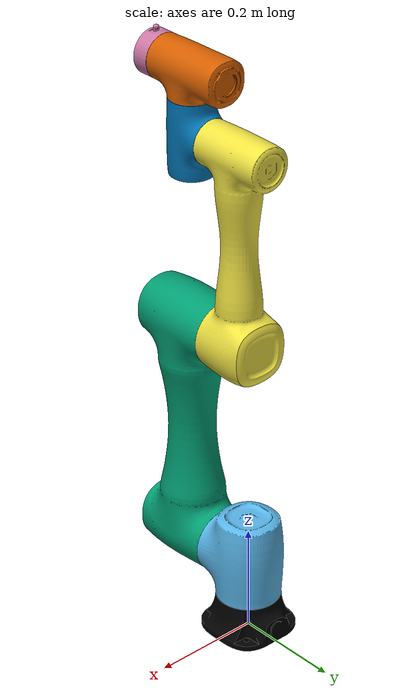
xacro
<?xml version="1.0"?>
<robot name="cr5_robot" xmlns:xacro="http://ros.org/wiki/xacro">
  <link name="base_link">
    <inertial>
      <origin xyz="-8.0961E-06 0.0019103 0.028995" rpy="0 0 0"/>
      <mass value="0.90882"/>
      <inertia
          ixx="0.0014545"
          ixy="4.2968E-08"
          ixz="-1.8199E-07"
          iyy="0.001345"
          iyz="-6.243E-06"
          izz="0.002155" />
    </inertial>
    <visual>
      <origin xyz="0 0 0" rpy="1.57 0 0"/>
      <geometry>
        <mesh filename="file://$(find cr5_description)/meshes/base_link.obj"/>
      </geometry>
      <material
          name="">
        <color rgba="0 0 0 1"/>
      </material>
    </visual>
    <collision>
      <origin xyz="0 0 0" rpy="1.57 0 0"/>
      <geometry>
        <mesh filename="file://$(find cr5_description)/meshes/base_link.obj"/>
      </geometry>
    </collision>
  </link>

  <link name="Link1">
    <inertial>
      <origin xyz="-8.7268E-07 -0.0032576 -0.0076748" rpy="0 0 0"/>
      <mass value="1.6123"/>
      <inertia
          ixx="0.0029122"
          ixy="5.7387E-09"
          ixz="1.9945E-08"
          iyy="0.0028191"
          iyz="0.00044094"
          izz="0.0032836" />
    </inertial>
    <visual>
      <origin xyz="0 0 0" rpy="1.57 0 0"/>
      <geometry>
        <mesh filename="file://$(find cr5_description)/meshes/Link1.obj"/>
      </geometry>

    </visual>
    <collision>
      <origin xyz="0 0 0" rpy="1.57 0 0"/>
      <geometry>
        <mesh filename="file://$(find cr5_description)/meshes/Link1.obj"/>
      </geometry>
    </collision>
  </link>

  <joint name="joint1" type="revolute">
    <origin xyz="0 0 0.147" rpy="0 0 0"/>
    <parent link="base_link"/>
    <child link="Link1"/>
    <axis xyz="0 0 1"/>
    <limit lower="-3.14" upper="3.14" effort="300" velocity="100"/>
  </joint>

  <link name="Link2">
    <inertial>
      <origin xyz="-0.21351 -1.3842E-06 0.14252" rpy="0 0 0"/>
      <mass value="5.5186"/>
      <inertia
          ixx="0.0085919"
          ixy="7.5552E-07"
          ixz="-7.8922E-07"
          iyy="0.027553"
          iyz="1.4629E-07"
          izz="0.028294" />
    </inertial>
    <visual>
      <origin xyz="0 0 0" rpy="1.57 0 0"/>
      <geometry>
        <mesh filename="file://$(find cr5_description)/meshes/Link2.obj"/>
      </geometry>

    </visual>
    <collision>
      <origin xyz="0 0 0" rpy="1.57 0 0"/>
      <geometry>
        <mesh filename="file://$(find cr5_description)/meshes/Link2.obj"/>
      </geometry>
    </collision>
  </link>

  <joint name="joint2" type="revolute">
    <origin xyz="0 0 0" rpy="1.5708 1.5708 0"/>
    <parent link="Link1"/>
    <child link="Link2"/>
    <axis xyz="0 0 1"/>
    <limit lower="-3.14" upper="3.14" effort="300" velocity="100"/>
  </joint>

  <link name="Link3">
    <inertial>
      <origin xyz="-0.15231 -1.4079E-07 0.022693" rpy="0 0 0"/>
      <mass value="2.8536"/>
      <inertia
          ixx="0.0032608"
          ixy="-3.2147E-10"
          ixz="0.00012363"
          iyy="0.0092967"
          iyz="2.9478E-10"
          izz="0.0095552" />
    </inertial>
    <visual>
      <origin xyz="0 0 0" rpy="1.57 0 0"/>
      <geometry>
        <mesh filename="file://$(find cr5_description)/meshes/Link3.obj"/>
      </geometry>

    </visual>
    <collision>
      <origin xyz="0 0 0" rpy="1.57 0 0"/>
      <geometry>
        <mesh filename="file://$(find cr5_description)/meshes/Link3.obj"/>
      </geometry>
    </collision>
  </link>

  <joint name="joint3" type="revolute">
    <origin xyz="-0.427 0 0" rpy="0 0 0"/>
    <parent link="Link2"/>
    <child link="Link3"/>
    <axis xyz="0 0 1"/>
    <limit lower="-2.86" upper="2.86" effort="300" velocity="100"/>
  </joint>

  <link name="Link4">
    <inertial>
      <origin xyz="-3.2386E-07 -0.002077 -0.0015548" rpy="0 0 0"/>
      <mass value="0.67058"/>
      <inertia
          ixx="0.00066939"
          ixy="4.1975E-10"
          ixz="-1.0734E-08"
          iyy="0.00065424"
          iyz="0.00011081"
          izz="0.00065365" />
    </inertial>
    <visual>
      <origin xyz="0 0 0" rpy="1.57 0 0"/>
      <geometry>
        <mesh filename="file://$(find cr5_description)/meshes/Link4.obj"/>
      </geometry>

    </visual>
    <collision>
      <origin xyz="0 0 0" rpy="1.57 0 0"/>
      <geometry>
        <mesh filename="file://$(find cr5_description)/meshes/Link4.obj"/>
      </geometry>
    </collision>
  </link>

  <joint name="joint4" type="revolute">
    <origin xyz="-0.357 0 0.141" rpy="0 0 -1.5708"/>
    <parent link="Link3"/>
    <child link="Link4"/>
    <axis xyz="0 0 1"/>
    <limit lower="-3.14" upper="3.14" effort="300" velocity="100"/>
  </joint>
  <link
      name="Link5">
    <inertial>
      <origin xyz="-3.7738E-07 -0.0045777 -0.0012971" rpy="0 0 0"/>
      <mass value="0.7269"/>
      <inertia
          ixx="0.00073069"
          ixy="-5.7806E-09"
          ixz="6.7132E-09"
          iyy="0.00071195"
          iyz="-0.00011926"
          izz="0.00071391" />
    </inertial>
    <visual>
      <origin xyz="0 0 0" rpy="1.57 0 0"/>
      <geometry>
        <mesh filename="file://$(find cr5_description)/meshes/Link5.obj"/>
      </geometry>

    </visual>
    <collision>
      <origin xyz="0 0 0" rpy="1.57 0 0"/>
      <geometry>
        <mesh filename="file://$(find cr5_description)/meshes/Link5.obj"/>
      </geometry>
    </collision>
  </link>

  <joint name="joint5" type="revolute">
    <origin xyz="0 -0.116 0" rpy="1.5708 0 0"/>
    <parent link="Link4"/>
    <child link="Link5"/>
    <axis xyz="0 0 1"/>
    <limit lower="-3.14" upper="3.14" effort="300" velocity="100"/>
  </joint>

  <link name="Link6">
    <inertial>
      <origin xyz="5.0777E-11 9.3774E-05 -0.019285" rpy="0 0 0"/>
      <mass value="0.15789"/>
      <inertia
          ixx="7.8045E-05"
          ixy="6.1582E-15"
          ixz="6.2471E-14"
          iyy="7.9168E-05"
          iyz="-1.3822E-07"
          izz="0.00012951" />
    </inertial>
    <visual>
      <origin xyz="0 0 0" rpy="1.57 0 0"/>
      <geometry>
        <mesh filename="file://$(find cr5_description)/meshes/Link6.obj"/>
      </geometry>
    </visual>
    <collision>
      <origin xyz="0 0 0" rpy="1.57 0 0"/>
      <geometry>
        <mesh filename="file://$(find cr5_description)/meshes/Link6.obj"/>
      </geometry>
    </collision>
  </link>

  <joint name="joint6" type="revolute">
    <origin xyz="0 0.105 0" rpy="-1.5708 0 0"/>
    <parent link="Link5"/>
    <child link="Link6"/>
    <axis xyz="0 0 1"/>
    <limit lower="-6.28" upper="6.28" effort="300" velocity="100"/>
  </joint>
</robot>
